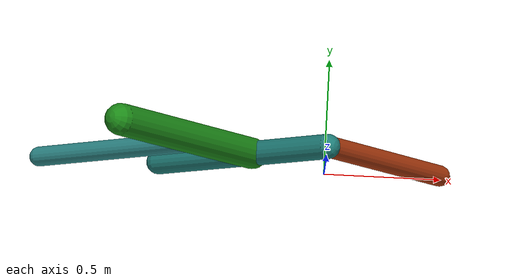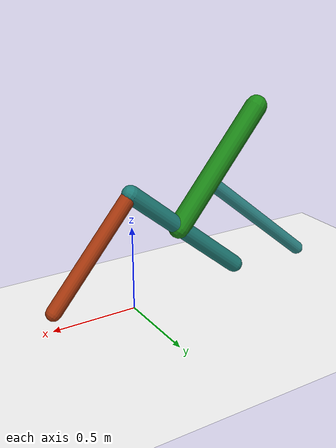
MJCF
<mujoco model="morphology">
  <option timestep="0.01"/>
  <default>
    <default class="/"/>
  </default>
  <asset>
    <texture name="texplane" type="2d" builtin="checker" rgb1="0.1 0.2 0.3" rgb2="0.2 0.3 0.4" width="300" height="300"/>
    <material name="MatPlane" class="/" texture="texplane" texrepeat="20 20" specular="1" shininess="1" reflectance="0.5"/>
  </asset>
  <worldbody>
    <light name="//unnamed_light_0" class="/" directional="true" pos="0 0 1.5" dir="0 0 -1.3" cutoff="1e+02" exponent="1" diffuse="1 1 1" specular="0.1 0.1 0.1"/>
    <geom name="ground" class="/" type="plane" size="15 15 0.5" material="MatPlane" rgba="1 1 1 1"/>
    <body name="body" pos="0 0 0.7">
      <geom name="geom0" class="/" type="capsule" contype="1" conaffinity="1" condim="3" size="0.045" rgba="0.66 0.22 0.053 1" friction="0.4 0.1 0.1" fromto="0 0 0 0.49 0 -0.59"/>
      <body name="body1" pos="0.0024 0 -0.003">
        <geom name="geom1" class="/" type="capsule" contype="1" conaffinity="1" condim="3" size="0.052" rgba="0.12 0.49 0.47 1" friction="0.4 0.1 0.1" fromto="0 0 0 -0.71 0 -0.59"/>
        <body name="body2" pos="-0.31 0 -0.26">
          <geom name="geom2" class="/" type="capsule" contype="1" conaffinity="1" condim="3" size="0.065" rgba="0.11 0.54 0.093 1" friction="0.4 0.1 0.1" fromto="0 0 0 -0.53 0 0.65"/>
          <body name="body3" pos="-0.2 0 0.25">
            <geom name="geom3" class="/" type="capsule" contype="1" conaffinity="1" condim="3" size="0.042" rgba="0.18 0.54 0.54 1" friction="0.4 0.1 0.1" fromto="0 0 0 -0.71 0 -0.59"/>
            <joint name="joint3" class="/" type="hinge" axis="0 1 0" limited="true" stiffness="20" range="-52 52" armature="0.1" damping="2"/>
          </body>
          <joint name="joint2" class="/" type="hinge" axis="0 1 0" limited="true" stiffness="20" range="-64 64" armature="0.1" damping="2"/>
        </body>
        <joint name="joint1" class="/" type="hinge" axis="0 1 0" limited="true" stiffness="20" range="-49 49" armature="0.1" damping="2"/>
      </body>
      <joint name="rootx" class="/" type="slide" axis="1 0 0" limited="false" stiffness="0" armature="0" damping="0"/>
      <joint name="rootz" class="/" type="slide" axis="0 0 1" limited="false" stiffness="0" armature="0" damping="0"/>
      <joint name="rooty" class="/" type="hinge" axis="0 1 0" limited="false" stiffness="0" armature="0" damping="0"/>
    </body>
  </worldbody>
  <actuator>
    <motor name="motor3" class="/" ctrllimited="true" ctrlrange="-1 1" gear="1.8e+02" joint="joint3"/>
    <motor name="motor2" class="/" ctrllimited="true" ctrlrange="-1 1" gear="1.8e+02" joint="joint2"/>
    <motor name="motor1" class="/" ctrllimited="true" ctrlrange="-1 1" gear="1.8e+02" joint="joint1"/>
  </actuator>
  <sensor>
    <subtreelinvel name="velocity" body="body"/>
  </sensor>
</mujoco>
